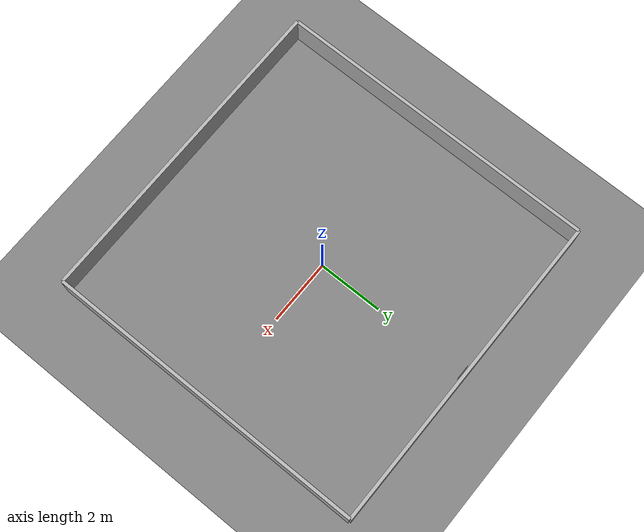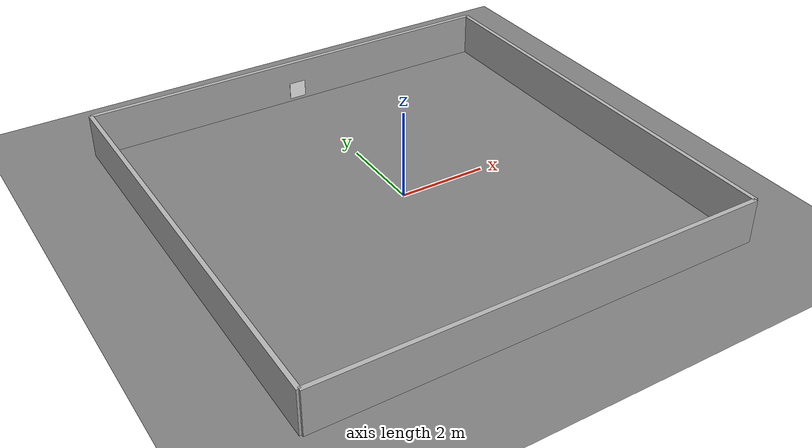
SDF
<?xml version="1.0"?>
<sdf version="1.9">
  <world name="docking_scenario">

    <plugin filename="gz-sim-physics-system"
            name="gz::sim::systems::Physics"/>
    <plugin filename="gz-sim-user-commands-system"
            name="gz::sim::systems::UserCommands"/>
    <plugin filename="gz-sim-scene-broadcaster-system"
            name="gz::sim::systems::SceneBroadcaster"/>
    <plugin filename="gz-sim-sensors-system"
            name="gz::sim::systems::Sensors">
      <render_engine>ogre2</render_engine>
    </plugin>
    <plugin filename="gz-sim-imu-system"
            name="gz::sim::systems::Imu"/>

    <light name="sun" type="directional">
      <cast_shadows>false</cast_shadows>
      <pose>0 0 10 0 0 0</pose>
      <diffuse>0.9 0.9 0.9 1</diffuse>
      <specular>0.3 0.3 0.3 1</specular>
      <direction>-0.5 0.1 -0.9</direction>
    </light>

    <model name="ground_plane">
      <static>true</static>
      <link name="link">
        <collision name="collision">
          <geometry>
            <plane><normal>0 0 1</normal><size>20 20</size></plane>
          </geometry>
        </collision>
        <visual name="visual">
          <geometry>
            <plane><normal>0 0 1</normal><size>20 20</size></plane>
          </geometry>
          <material>
            <ambient>0.5 0.5 0.5 1</ambient>
            <diffuse>0.5 0.5 0.5 1</diffuse>
          </material>
        </visual>
      </link>
    </model>

    <!-- North wall -->
    <model name="wall_north">
      <static>true</static>
      <pose>0 5 0.5 0 0 0</pose>
      <link name="link">
        <collision name="col"><geometry><box><size>10 0.1 1</size></box></geometry></collision>
        <visual name="vis"><geometry><box><size>10 0.1 1</size></box></geometry>
          <material><ambient>0.7 0.7 0.7 1</ambient><diffuse>0.7 0.7 0.7 1</diffuse></material>
        </visual>
      </link>
    </model>
    <!-- South wall -->
    <model name="wall_south">
      <static>true</static>
      <pose>0 -5 0.5 0 0 0</pose>
      <link name="link">
        <collision name="col"><geometry><box><size>10 0.1 1</size></box></geometry></collision>
        <visual name="vis"><geometry><box><size>10 0.1 1</size></box></geometry>
          <material><ambient>0.7 0.7 0.7 1</ambient><diffuse>0.7 0.7 0.7 1</diffuse></material>
        </visual>
      </link>
    </model>
    <!-- West wall -->
    <model name="wall_west">
      <static>true</static>
      <pose>-5 0 0.5 0 0 0</pose>
      <link name="link">
        <collision name="col"><geometry><box><size>0.1 10 1</size></box></geometry></collision>
        <visual name="vis"><geometry><box><size>0.1 10 1</size></box></geometry>
          <material><ambient>0.7 0.7 0.7 1</ambient><diffuse>0.7 0.7 0.7 1</diffuse></material>
        </visual>
      </link>
    </model>
    <!-- East wall (dock side) -->
    <model name="wall_east">
      <static>true</static>
      <pose>5 0 0.5 0 0 0</pose>
      <link name="link">
        <collision name="col"><geometry><box><size>0.1 10 1</size></box></geometry></collision>
        <visual name="vis"><geometry><box><size>0.1 10 1</size></box></geometry>
          <material><ambient>0.7 0.7 0.7 1</ambient><diffuse>0.7 0.7 0.7 1</diffuse></material>
        </visual>
      </link>
    </model>

    <!-- AprilTag dock: against the north wall (wall at y=5), the dock panel
         centred 10 cm south at y=4.9 with the tag face pointing south so a
         robot inside the room sees it head-on. -->
    <include>
      <uri>model://apriltag_dock</uri>
      <name>apriltag_dock</name>
      <pose>0 4.9 0.3 0 0 -1.5707</pose>
    </include>

  </world>
</sdf>

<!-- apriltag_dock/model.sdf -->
<sdf version="1.9">
  <model name="apriltag_dock">
    <static>true</static>
    <link name="panel_link">
      <visual name="tag_visual">
        <geometry>
          <box>
            <size>0.01 0.40 0.40</size>
          </box>
        </geometry>
        <material>
          <diffuse>1 1 1 1</diffuse>
          <specular>0.1 0.1 0.1 1</specular>
          <pbr>
            <metal>
              <albedo_map>model://apriltag_dock/materials/textures/tag0_big.png</albedo_map>
              <metalness>0.0</metalness>
              <roughness>1.0</roughness>
            </metal>
          </pbr>
        </material>
      </visual>
      <collision name="tag_collision">
        <geometry>
          <box>
            <size>0.01 0.40 0.40</size>
          </box>
        </geometry>
      </collision>
    </link>
  </model>
</sdf>
